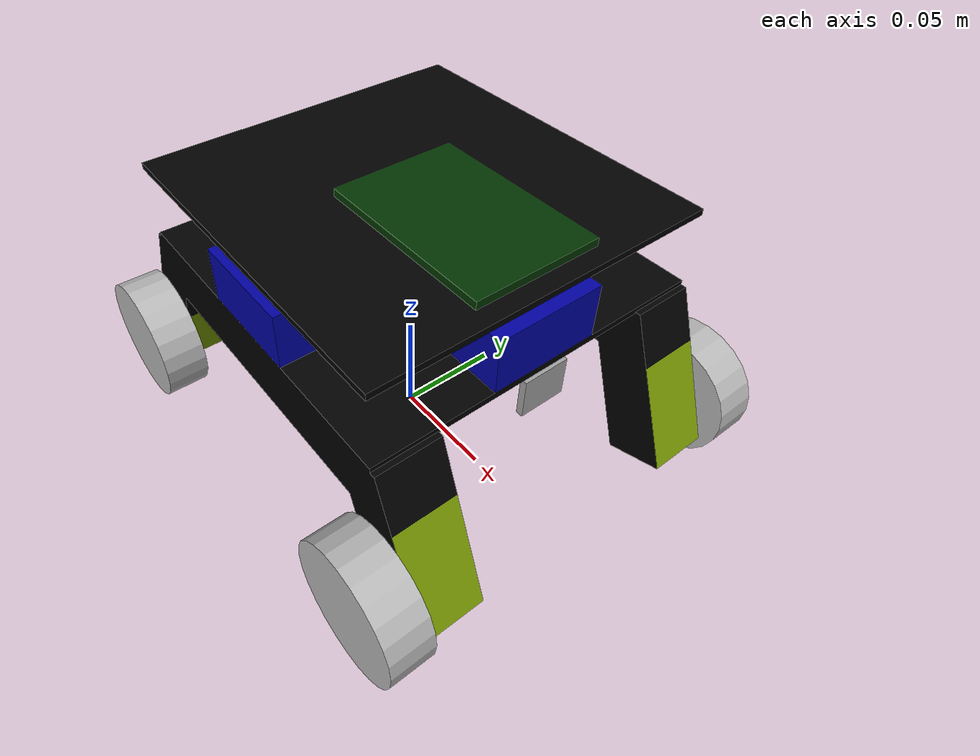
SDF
<?xml version='1.0'?>
<sdf version='1.4'>
  <model name="robob_platform">
        <static>false</static>
   <link name="base_link">
        <pose>0 0 0 0 0 0</pose>
        <collision name="platform_link_collision">
            <geometry>
                <mesh>
		  <uri>model://robob_platform.dae</uri>
                </mesh>
            </geometry>
        </collision>
        <visual name="platform_link_visual">
            <geometry>
                <mesh>
		  <uri>model://robob_platform.dae</uri>
                </mesh>
            </geometry>
        </visual>
    </link>

    <link name="left_front_wheel">
        <pose>0.09 0.09 0.03 0 1.5707 1.5707</pose>
        <collision name="left_front_wheel_collision">
          <geometry>
            <cylinder>
              <radius>.03</radius>
              <length>.02</length>
            </cylinder>
          </geometry>
        </collision>
        <visual name="left_front_wheel_visual">
          <geometry>
            <cylinder>
              <radius>.03</radius>
              <length>.02</length>
            </cylinder>
          </geometry>
        </visual>
      </link>

   <link name="right_front_wheel">
        <pose>0.09 -0.09 0.03 0 1.5707 1.5707</pose>
        <collision name="right_front_wheel_collision">
          <geometry>
            <cylinder>
              <radius>.03</radius>
              <length>.02</length>
            </cylinder>
          </geometry>
        </collision>
        <visual name="right_front_wheel_visual">
          <geometry>
            <cylinder>
              <radius>.03</radius>
              <length>.02</length>
            </cylinder>
          </geometry>
        </visual>
      </link>

   <link name="right_back_wheel">
        <pose>-0.09 -0.09 0.03 0 1.5707 1.5707</pose>
        <collision name="right_back_wheel_collision">
          <geometry>
            <cylinder>
              <radius>.03</radius>
              <length>.02</length>
            </cylinder>
          </geometry>
        </collision>
        <visual name="right_back_wheelvisual">
          <geometry>
            <cylinder>
              <radius>.03</radius>
              <length>.02</length>
            </cylinder>
          </geometry>
        </visual>
      </link>

    <link name="left_back_wheel">
        <pose>-0.09 0.09 0.03 0 1.5707 1.5707</pose>
        <collision name="left_back_wheel_collision">
          <geometry>
            <cylinder>
              <radius>.03</radius>
              <length>.02</length>
            </cylinder>
          </geometry>
        </collision>
        <visual name="left_back_wheel_visual">
          <geometry>
            <cylinder>
              <radius>.03</radius>
              <length>.02</length>
            </cylinder>
          </geometry>
        </visual>
      </link>

    <joint name="leftbackwheel_joint" type="revolute">
      <parent>base_link</parent>
      <child>left_back_wheel</child>
      <pose>0 0 0 0 0 0</pose>
      <axis>
        <xyz>0 1 0</xyz>
      </axis>
    </joint>

    <joint name="rightbackwheel_joint" type="revolute">
      <parent>base_link</parent>
      <child>right_back_wheel</child>
      <pose>0 0 0 0 0 0</pose>
      <axis>
        <xyz>0 1 0</xyz>
      </axis>
    </joint>

    <joint name="leftfrontwheel_joint" type="revolute">
      <parent>base_link</parent>
      <child>left_front_wheel</child>
      <pose>0 0 0 0 0 0</pose>
      <axis>
        <xyz>0 1 0</xyz>
      </axis>
    </joint>

    <joint name="rightfrontwheel_joint" type="revolute">
      <parent>base_link</parent>
      <child>right_front_wheel</child>
      <pose>0 0 0 0 0 0</pose>
      <axis>
        <xyz>0 1 0</xyz>
      </axis>
    </joint>

<plugin name="differential_drive_controller" filename="libgazebo_ros_diff_drive.so">
 <alwaysOn>true</alwaysOn>
 <updateRate>20</updateRate>
 <leftJoint>leftfrontwheel_joint</leftJoint>
 <rightJoint>rightfrontwheel_joint</rightJoint>
 <wheelSeparation>0.16</wheelSeparation>
 <wheelDiameter>0.025</wheelDiameter>
 <torque>20</torque>
 <commandTopic>cmd_vel</commandTopic>
 <odometryTopic>odom</odometryTopic>
 <odometryFrame>odom</odometryFrame>
 <robotBaseFrame>base_footprint</robotBaseFrame>
 </plugin>

    <plugin filename="libmodel_diff_drive.so" name="model_diff_drive_plugin">
      <leftbackwheel_joint>leftbackwheel_joint</leftbackwheel_joint>
      <rightbackwheel_joint>rightbackwheel_joint</rightbackwheel_joint>
      <leftfrontwheel_joint>leftfrontwheel_joint</leftfrontwheel_joint>
      <rightfrontwheel_joint>rightfrontwheel_joint</rightfrontwheel_joint>
    </plugin>

  </model>
</sdf>
